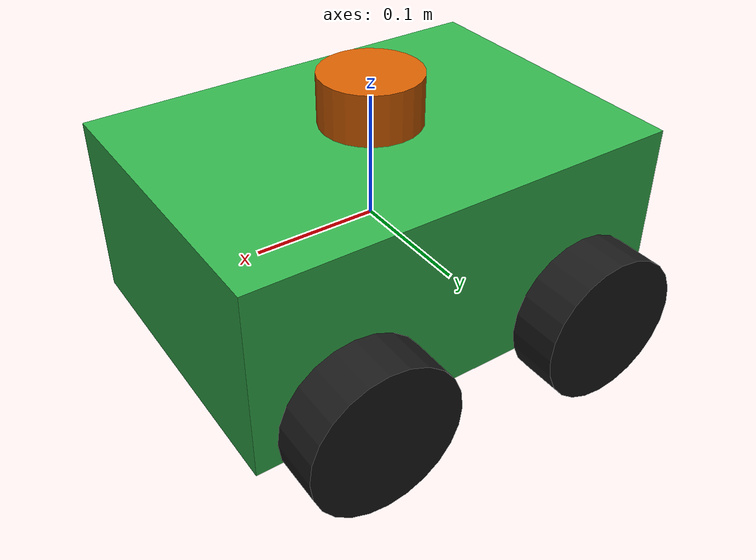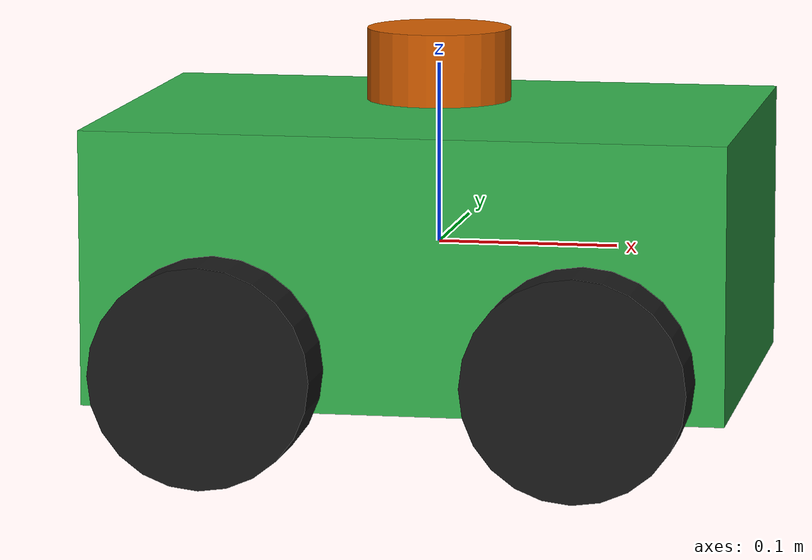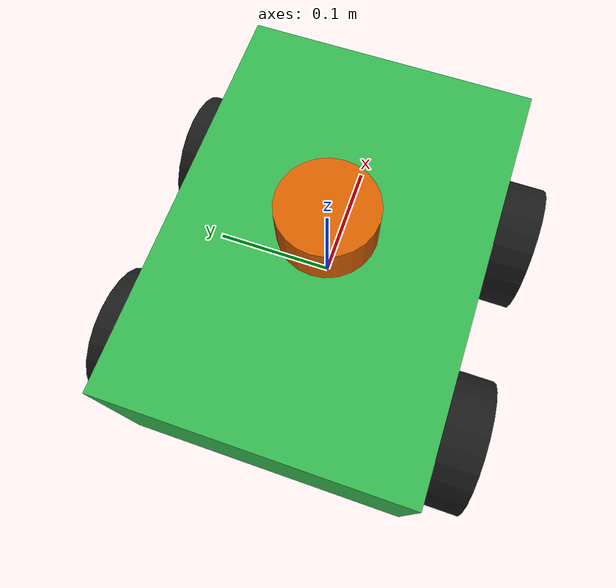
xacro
<?xml version="1.0"?>
<robot name="executor_rover" xmlns:xacro="http://www.ros.org/wiki/xacro">
  <xacro:arg name="ns" default="executor"/>

  <link name="base_link">
    <visual>
      <geometry><box size="0.35 0.25 0.15"/></geometry>
      <material name="green"><color rgba="0.2 0.7 0.3 1"/></material>
    </visual>
    <collision><geometry><box size="0.35 0.25 0.15"/></geometry></collision>
    <inertial>
      <mass value="3.0"/>
      <inertia ixx="0.05" ixy="0" ixz="0" iyy="0.06" iyz="0" izz="0.08"/>
    </inertial>
  </link>

  <xacro:macro name="wheel" params="name x y">
    <link name="${name}">
      <visual><geometry><cylinder radius="0.06" length="0.04"/></geometry>
        <material name="black"><color rgba="0.1 0.1 0.1 1"/></material></visual>
      <collision><geometry><cylinder radius="0.06" length="0.04"/></geometry></collision>
      <inertial><mass value="0.3"/><inertia ixx="0.001" ixy="0" ixz="0" iyy="0.001" iyz="0" izz="0.001"/></inertial>
    </link>
    <joint name="${name}_joint" type="continuous">
      <parent link="base_link"/><child link="${name}"/>
      <origin xyz="${x} ${y} -0.05" rpy="-1.5708 0 0"/>
      <axis xyz="0 0 1"/>
    </joint>
  </xacro:macro>
  <xacro:wheel name="wheel_fl" x="0.1" y="0.15"/>
  <xacro:wheel name="wheel_fr" x="0.1" y="-0.15"/>
  <xacro:wheel name="wheel_bl" x="-0.1" y="0.15"/>
  <xacro:wheel name="wheel_br" x="-0.1" y="-0.15"/>

  <link name="lidar_link">
    <visual><geometry><cylinder radius="0.04" length="0.04"/></geometry></visual>
  </link>
  <joint name="lidar_joint" type="fixed">
    <parent link="base_link"/><child link="lidar_link"/>
    <origin xyz="0 0 0.1" rpy="0 0 0"/>
  </joint>

  <gazebo reference="lidar_link">
    <sensor type="ray" name="executor_lidar">
      <pose>0 0 0 0 0 0</pose>
      <visualize>false</visualize>
      <update_rate>10</update_rate>
      <ray>
        <scan><horizontal><samples>360</samples><resolution>1</resolution>
          <min_angle>-3.14159</min_angle><max_angle>3.14159</max_angle></horizontal></scan>
        <range><min>0.12</min><max>12.0</max><resolution>0.02</resolution></range>
      </ray>
      <plugin name="executor_lidar_plugin" filename="libgazebo_ros_ray_sensor.so">
        <ros><namespace>/$(arg ns)</namespace><remapping>~/out:=scan</remapping></ros>
        <output_type>sensor_msgs/LaserScan</output_type>
        <frame_name>$(arg ns)/lidar_link</frame_name>
      </plugin>
    </sensor>
  </gazebo>

  <gazebo>
    <plugin name="executor_diff_drive" filename="libgazebo_ros_diff_drive.so">
      <ros><namespace>/$(arg ns)</namespace></ros>
      <left_joint>wheel_fl_joint</left_joint>
      <right_joint>wheel_fr_joint</right_joint>
      <wheel_separation>0.3</wheel_separation>
      <wheel_diameter>0.12</wheel_diameter>
      <command_topic>cmd_vel</command_topic>
      <odometry_topic>odom</odometry_topic>
      <odometry_frame>$(arg ns)/odom</odometry_frame>
      <robot_base_frame>$(arg ns)/base_link</robot_base_frame>
      <publish_odom>true</publish_odom>
      <publish_odom_tf>true</publish_odom_tf>
      <update_rate>30</update_rate>
    </plugin>
  </gazebo>
</robot>
